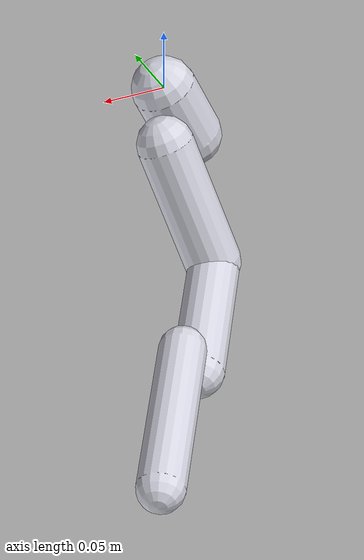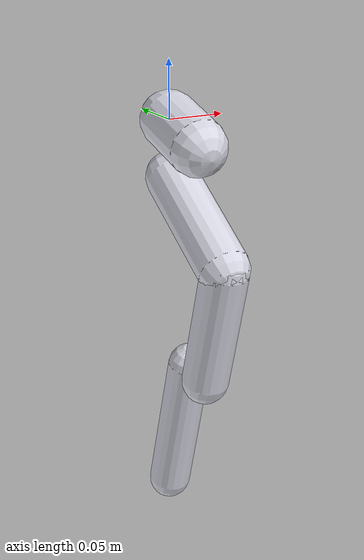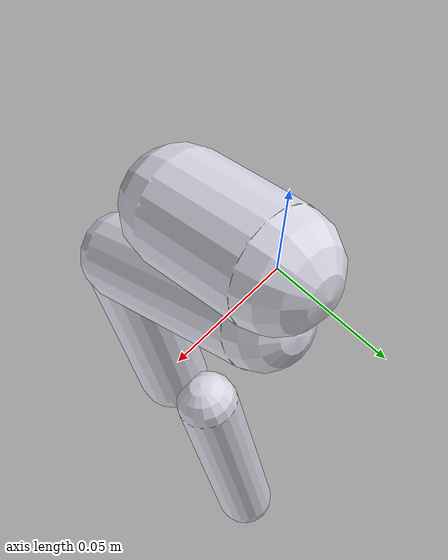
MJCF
<mujoco model="manipulator_3dof">

  <compiler angle="radian"/>

  <default>
    <default class="arm3dof">
      <joint frictionloss="0.1" armature="0.1"/>
      <position kp="50" dampratio="1" forcerange="-3.5 3.5"/>
      <default class="visual">
        <geom contype="0" conaffinity="0" density="0" group="2" rgba="0.85 0.85 0.9 1"/>
      </default>
      <default class="collision">
        <geom group="3" rgba="0.7 0.7 0.75 0.3" contype="0" conaffinity="0"/>
      </default>
    </default>
  </default>

  <worldbody>
    <!-- 基座：用 capsule 替代原 STL mesh，保持相近惯性参数 -->
    <body name="Base" euler="1.8596 0 0" childclass="arm3dof">
      <inertial pos="0 0 0.025" mass="0.1" diaginertia="8e-5 8e-5 8e-5"/>
      <geom type="capsule" size="0.025" fromto="0 0 0 0 0 0.05" class="visual"/>
      <geom name="base_geom" type="capsule" size="0.025" fromto="0 0 0 0 0 0.05" class="collision"/>
      <body name="Rotation_Pitch" pos="0 -0.0452 0.0165" quat="0.707105 0.707108 0 0">
        <inertial pos="-9e-05 0.059 0.031" quat="0.363978 0.441169 -0.623108 0.533504"
          mass="0.119" diaginertia="6e-05 6e-05 3e-05"/>
        <joint name="joint1" axis="0 1 0" range="-1.92 1.92"/>
        <geom type="capsule" size="0.022" fromto="0 0 0 0 0.10 0.03" class="visual"/>
        <geom name="rotation_geom" type="capsule" size="0.022" fromto="0 0 0 0 0.10 0.03" class="collision"/>
        <body name="Upper_Arm" pos="0 0.1025 0.0306" euler="1.57079 0 0">
          <inertial pos="0 0.070 0.003" quat="0.50104 0.498994 -0.493562 0.50632"
            mass="0.162" diaginertia="0.00021 0.00017 7e-05"/>
          <joint name="joint2" axis="1 0 0" range="-3.32 0.174"/>
          <geom type="capsule" size="0.020" fromto="0 0 0 0 0.11 0" class="visual"/>
          <geom name="upper_geom" type="capsule" size="0.020" fromto="0 0 0 0 0.11 0" class="collision"/>
          <body name="Lower_Arm" pos="0 0.11257 0.028" euler="-1.57079 0 0">
            <inertial pos="-0.003 0.001 0.077" quat="0.702 0.079 0.065 0.705"
              mass="0.148" diaginertia="0.00014 0.00011 5e-05"/>
            <joint name="joint3" axis="1 0 0" range="-0.174 3.14"/>
            <geom type="capsule" size="0.018" fromto="0 0 0 0 0 0.13" class="visual"/>
            <geom name="lower_geom" type="capsule" size="0.018" fromto="0 0 0 0 0 0.13" class="collision"/>
            <!-- 末端执行器 -->
            <site name="ee_site" pos="0 0.0052 0.1349" euler="-1.57079 0 0" size="0.008" rgba="1 0 0 1"/>
          </body>
        </body>
      </body>
    </body>
  </worldbody>

  <actuator>
    <position class="arm3dof" name="joint1" joint="joint1" inheritrange="1"/>
    <position class="arm3dof" name="joint2" joint="joint2" inheritrange="1"/>
    <position class="arm3dof" name="joint3" joint="joint3" inheritrange="1"/>
  </actuator>

  <sensor>
    <jointpos name="jointpos1" joint="joint1"/>
    <jointpos name="jointpos2" joint="joint2"/>
    <jointpos name="jointpos3" joint="joint3"/>
    <jointvel name="jointvel1" joint="joint1"/>
    <jointvel name="jointvel2" joint="joint2"/>
    <jointvel name="jointvel3" joint="joint3"/>
    <framepos name="ee_pos" objtype="site" objname="ee_site"/>
    <framequat name="ee_quat" objtype="site" objname="ee_site"/>
  </sensor>

  <contact>
    <exclude body1="Base" body2="Rotation_Pitch"/>
  </contact>
</mujoco>
